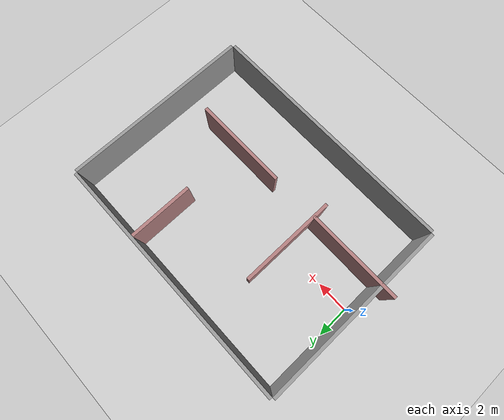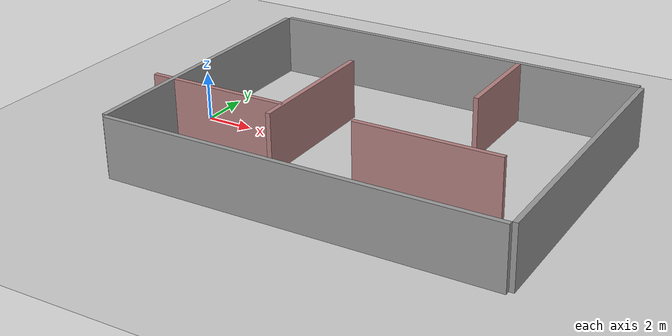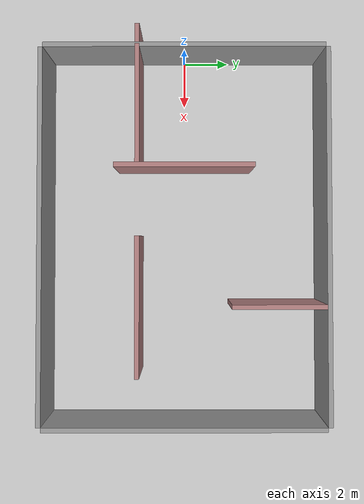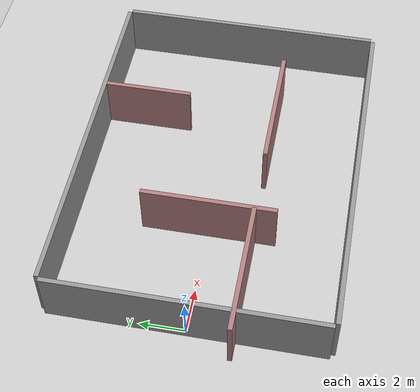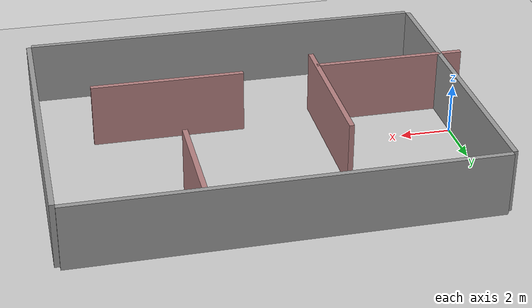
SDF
<sdf version="1.9">
 <world name="multi_room">
  <plugin filename="libgz-sim-physics-system.so" name="gz::sim::systems::Physics"/>
  <plugin filename="libgz-sim-user-commands-system.so" name="gz::sim::systems::UserCommands"/>
  <plugin filename="libgz-sim-scene-broadcaster-system.so" name="gz::sim::systems::SceneBroadcaster"/>
  <plugin filename="libgz-sim-sensors-system.so" name="gz::sim::systems::Sensors"/>
  <scene><ambient>0.4 0.4 0.4 1.0</ambient><background>0.7 0.7 0.7 1.0</background></scene>
  <model name="ground_plane">
   <static>true</static>
   <link name="link">
    <collision name="collision">
     <geometry><plane><normal>0 0 1</normal><size>100 100</size></plane></geometry>
    </collision>
    <visual name="visual">
     <geometry><plane><normal>0 0 1</normal><size>100 100</size></plane></geometry>
     <material><ambient>0.8 0.8 0.8 1</ambient><diffuse>0.8 0.8 0.8 1</diffuse></material>
    </visual>
   </link>
  </model>
  <light name="sun" type="directional">
   <pose>0 0 10 0 0 0</pose>
   <diffuse>0.9 0.9 0.9 1</diffuse>
   <specular>0.2 0.2 0.2 1</specular>
   <direction>-0.5 0.1 -0.9</direction>
  </light>
  <model name="wall_outer_north">
   <static>true</static>
   <link name="link">
    <collision name="collision"><geometry><box><size>16 0.2 2.5</size></box></geometry></collision>
    <visual name="visual">
     <geometry><box><size>16 0.2 2.5</size></box></geometry>
     <material><ambient>0.6 0.6 0.6 1</ambient><diffuse>0.6 0.6 0.6 1</diffuse></material>
    </visual>
   </link>
   <pose>8 6.1 1.25 0 0 0</pose>
  </model>
  <model name="wall_outer_south">
   <static>true</static>
   <link name="link">
    <collision name="collision"><geometry><box><size>16 0.2 2.5</size></box></geometry></collision>
    <visual name="visual">
     <geometry><box><size>16 0.2 2.5</size></box></geometry>
     <material><ambient>0.6 0.6 0.6 1</ambient><diffuse>0.6 0.6 0.6 1</diffuse></material>
    </visual>
   </link>
   <pose>8 -6.1 1.25 0 0 0</pose>
  </model>
  <model name="wall_outer_east">
   <static>true</static>
   <link name="link">
    <collision name="collision"><geometry><box><size>0.2 12 2.5</size></box></geometry></collision>
    <visual name="visual">
     <geometry><box><size>0.2 12 2.5</size></box></geometry>
     <material><ambient>0.6 0.6 0.6 1</ambient><diffuse>0.6 0.6 0.6 1</diffuse></material>
    </visual>
   </link>
   <pose>16.1 0 1.25 0 0 0</pose>
  </model>
  <model name="wall_outer_west">
   <static>true</static>
   <link name="link">
    <collision name="collision"><geometry><box><size>0.2 12 2.5</size></box></geometry></collision>
    <visual name="visual">
     <geometry><box><size>0.2 12 2.5</size></box></geometry>
     <material><ambient>0.6 0.6 0.6 1</ambient><diffuse>0.6 0.6 0.6 1</diffuse></material>
    </visual>
   </link>
   <pose>-0.1 0 1.25 0 0 0</pose>
  </model>
  <model name="wall_interior_1">
   <static>true</static>
   <link name="link">
    <collision name="collision"><geometry><box><size>0.2 6 2.5</size></box></geometry></collision>
    <visual name="visual">
     <geometry><box><size>0.2 6 2.5</size></box></geometry>
     <material><ambient>0.7 0.5 0.5 1</ambient><diffuse>0.7 0.5 0.5 1</diffuse></material>
    </visual>
   </link>
   <pose>5 0 1.25 0 0 0</pose>
  </model>
  <model name="wall_interior_2">
   <static>true</static>
   <link name="link">
    <collision name="collision"><geometry><box><size>6 0.2 2.5</size></box></geometry></collision>
    <visual name="visual">
     <geometry><box><size>6 0.2 2.5</size></box></geometry>
     <material><ambient>0.7 0.5 0.5 1</ambient><diffuse>0.7 0.5 0.5 1</diffuse></material>
    </visual>
   </link>
   <pose>2 -2 1.25 0 0 0</pose>
  </model>
  <model name="wall_interior_3">
   <static>true</static>
   <link name="link">
    <collision name="collision"><geometry><box><size>6 0.2 2.5</size></box></geometry></collision>
    <visual name="visual">
     <geometry><box><size>6 0.2 2.5</size></box></geometry>
     <material><ambient>0.7 0.5 0.5 1</ambient><diffuse>0.7 0.5 0.5 1</diffuse></material>
    </visual>
   </link>
   <pose>11 -2 1.25 0 0 0</pose>
  </model>
  <model name="wall_interior_4">
   <static>true</static>
   <link name="link">
    <collision name="collision"><geometry><box><size>0.2 4 2.5</size></box></geometry></collision>
    <visual name="visual">
     <geometry><box><size>0.2 4 2.5</size></box></geometry>
     <material><ambient>0.7 0.5 0.5 1</ambient><diffuse>0.7 0.5 0.5 1</diffuse></material>
    </visual>
   </link>
   <pose>11 4 1.25 0 0 0</pose>
  </model>
 </world>
</sdf>
